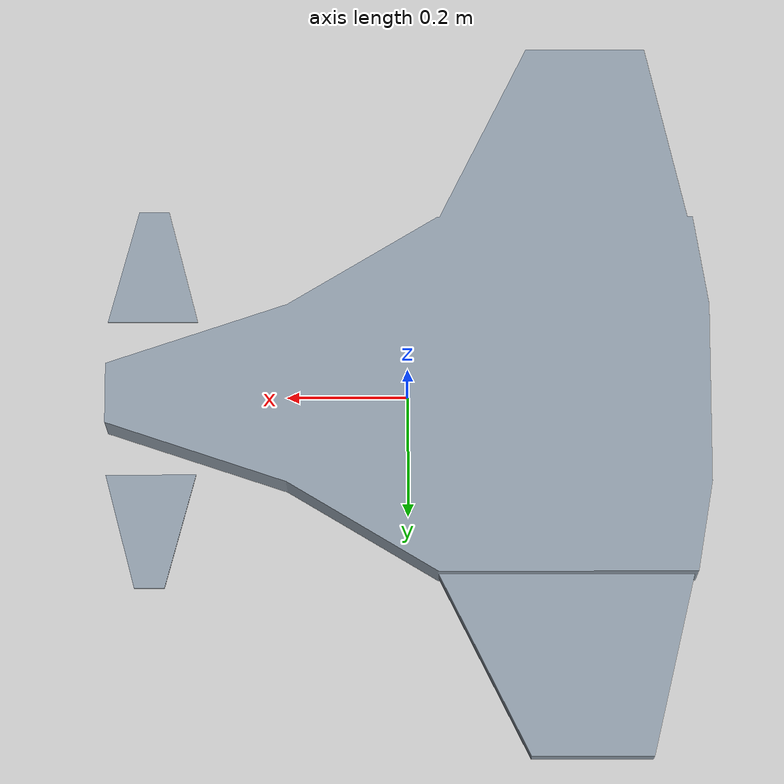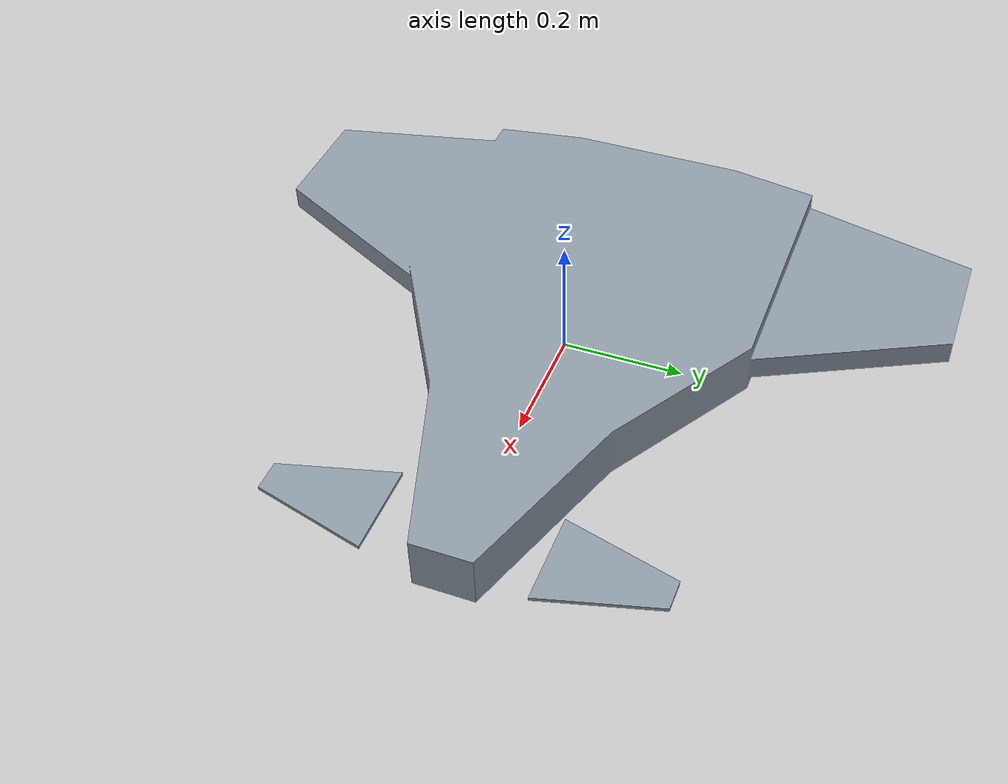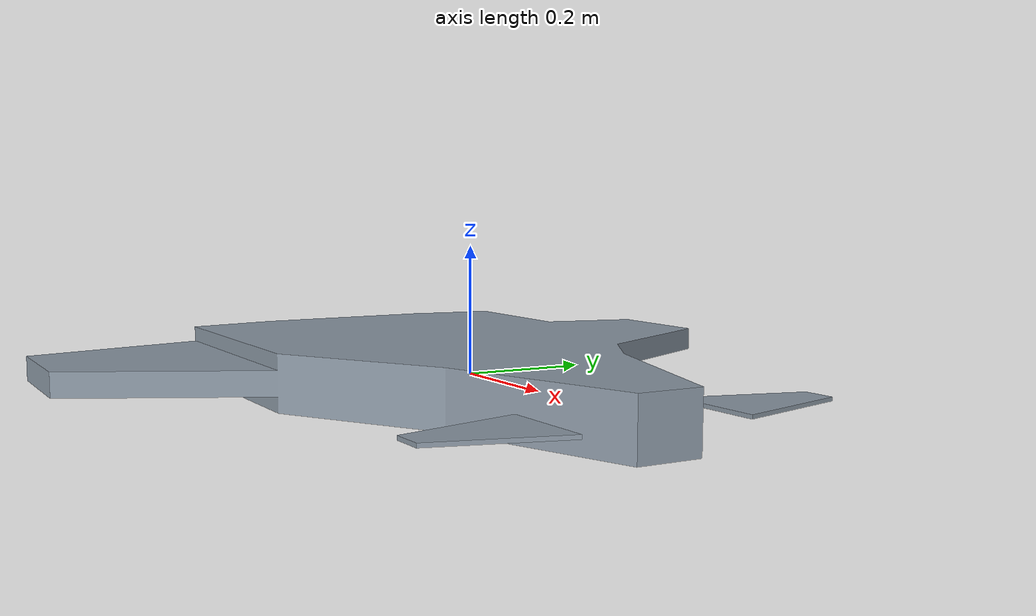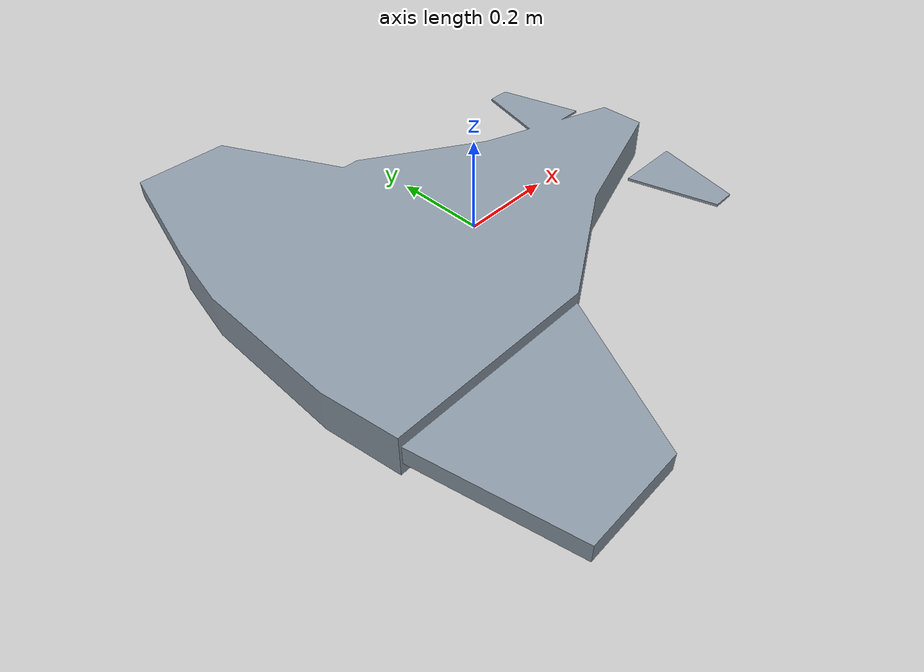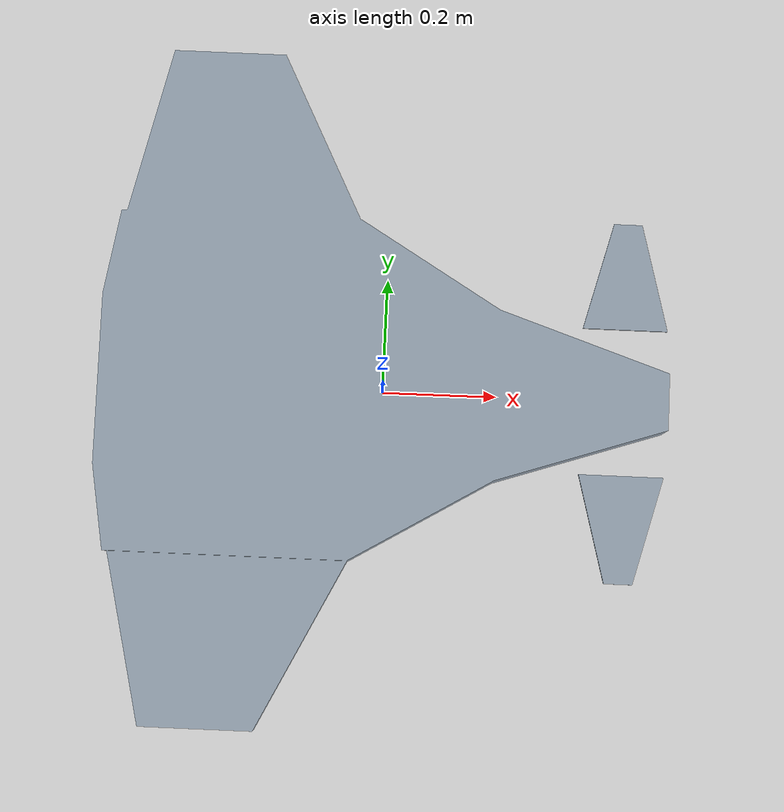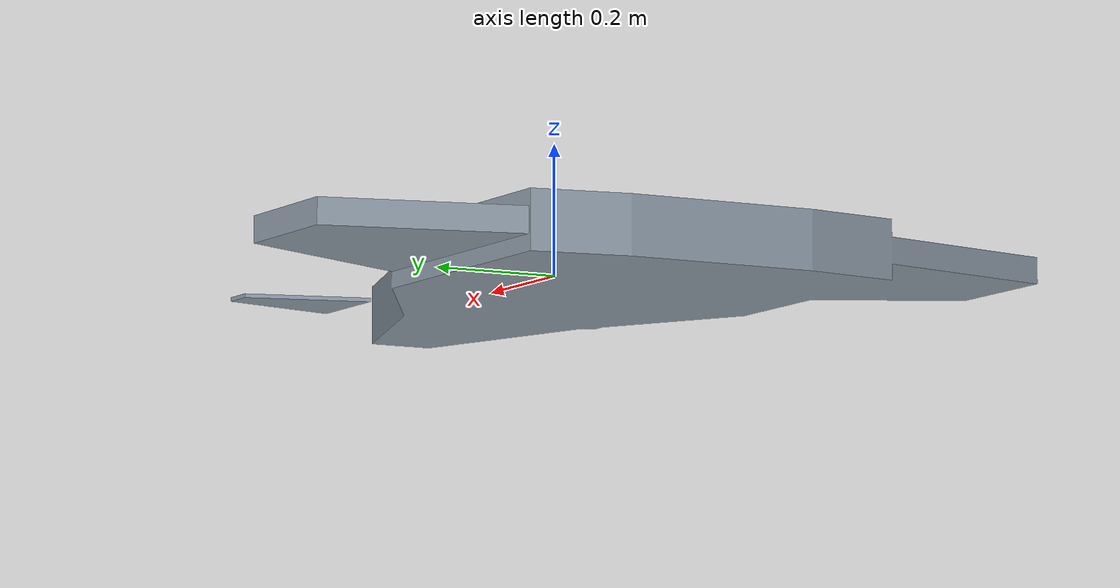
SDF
<?xml version="1.0"?>
<!-- generated by hil/gazebo/make_model.py from results/aero_db_10kg.json — do not edit by hand -->
<sdf version="1.9">
  <model name="ncav_subscale">
    <link name="base_link">
      <inertial>
        <mass>10.3000</mass>
        <inertia><ixx>0.18130</ixx><iyy>0.45071</iyy><izz>0.63175</izz><ixy>0</ixy><ixz>0</ixz><iyz>0</iyz></inertia>
      </inertial>
      <visual name="planform"><geometry><mesh><uri>meshes/planform.stl</uri></mesh></geometry>
        <material><ambient>0.45 0.5 0.55 1</ambient><diffuse>0.55 0.6 0.65 1</diffuse></material></visual>
      <collision name="nose"><pose>0.400 0.000 -0.10 0 0 0</pose>
        <geometry><sphere><radius>0.02</radius></sphere></geometry>
        <surface><friction><ode><mu>0.05</mu><mu2>0.8</mu2></ode></friction></surface></collision>
      <collision name="main_l"><pose>-0.080 0.120 -0.10 0 0 0</pose>
        <geometry><sphere><radius>0.02</radius></sphere></geometry>
        <surface><friction><ode><mu>0.05</mu><mu2>0.8</mu2></ode></friction></surface></collision>
      <collision name="main_r"><pose>-0.080 -0.120 -0.10 0 0 0</pose>
        <geometry><sphere><radius>0.02</radius></sphere></geometry>
        <surface><friction><ode><mu>0.05</mu><mu2>0.8</mu2></ode></friction></surface></collision>
      <sensor name="imu_sensor" type="imu">
        <always_on>1</always_on><update_rate>200</update_rate>
        <topic>/world/carrier/model/ncav_subscale/link/base_link/sensor/imu/imu</topic>
        <plugin filename="gz-sim-imu-system" name="gz::sim::systems::Imu"/>
      </sensor>
      <sensor name="navsat_sensor" type="navsat">
        <always_on>1</always_on><update_rate>10</update_rate>
        <topic>/world/carrier/model/ncav_subscale/link/base_link/sensor/navsat/navsat</topic>
        <plugin filename="gz-sim-navsat-system" name="gz::sim::systems::NavSat"/>
      </sensor>
      <sensor name="air_pressure_sensor" type="air_pressure">
        <always_on>1</always_on><update_rate>50</update_rate>
        <topic>/world/carrier/model/ncav_subscale/link/base_link/sensor/air_pressure/air_pressure</topic>
        <plugin filename="gz-sim-air-pressure-system" name="gz::sim::systems::AirPressure"/>
      </sensor>
      <sensor name="magnetometer_sensor" type="magnetometer">
        <always_on>1</always_on><update_rate>50</update_rate>
        <topic>/world/carrier/model/ncav_subscale/link/base_link/sensor/magnetometer/magnetometer</topic>
        <plugin filename="gz-sim-magnetometer-system" name="gz::sim::systems::Magnetometer"/>
      </sensor>
    </link>
    <link name="elevon_left"><pose>-0.37 0.45 0 0 0 0</pose>
      <inertial><mass>0.01</mass><inertia><ixx>1e-5</ixx><iyy>1e-5</iyy><izz>1e-5</izz></inertia></inertial></link>
    <link name="elevon_right"><pose>-0.37 -0.45 0 0 0 0</pose>
      <inertial><mass>0.01</mass><inertia><ixx>1e-5</ixx><iyy>1e-5</iyy><izz>1e-5</izz></inertia></inertial></link>
    <joint name="elevon_left_joint" type="revolute"><parent>base_link</parent><child>elevon_left</child>
      <axis><xyz>0 1 0</xyz><limit><lower>-0.35</lower><upper>0.35</upper></limit></axis></joint>
    <joint name="elevon_right_joint" type="revolute"><parent>base_link</parent><child>elevon_right</child>
      <axis><xyz>0 1 0</xyz><limit><lower>-0.35</lower><upper>0.35</upper></limit></axis></joint>
    <plugin filename="gz-sim-joint-position-controller-system" name="gz::sim::systems::JointPositionController">
      <joint_name>elevon_left_joint</joint_name><p_gain>2.0</p_gain><cmd_max>10</cmd_max><cmd_min>-10</cmd_min></plugin>
    <plugin filename="gz-sim-joint-position-controller-system" name="gz::sim::systems::JointPositionController">
      <joint_name>elevon_right_joint</joint_name><p_gain>2.0</p_gain><cmd_max>10</cmd_max><cmd_min>-10</cmd_min></plugin>
    <plugin filename="gz-sim-odometry-publisher-system" name="gz::sim::systems::OdometryPublisher">
      <dimensions>3</dimensions><odom_publish_frequency>200</odom_publish_frequency></plugin>
    <plugin filename="gz-sim-advanced-lift-drag-system" name="gz::sim::systems::AdvancedLiftDrag">
      <link_name>base_link</link_name>
      <air_density>1.225</air_density>
      <area>0.62475</area><AR>2.3049</AR><mac>0.64442</mac><eff>0.6168</eff>
      <forward>1 0 0</forward><upward>0 0 1</upward><cp>0 0 0</cp>
      <CL0>0.08197</CL0><CD0>0.00786</CD0><Cem0>0.00809</Cem0>
      <CLa>2.71101</CLa><Cema>-0.05119</Cema>
      <CYb>-0.04003</CYb><Cellb>-0.07659</Cellb><Cenb>0.02097</Cenb>
      <CLq>2.76525</CLq><Cemq>-1.04508</Cemq>
      <CYp>0.16486</CYp><Cellp>-0.18747</Cellp><Cenp>-0.03968</Cenp>
      <CYr>-0.02067</CYr><Cellr>0.12211</Cellr><Cenr>-0.01250</Cenr>
      <alpha_stall>0.34688</alpha_stall><Cema_stall>0.0</Cema_stall>
      <num_ctrl_surfaces>2</num_ctrl_surfaces>
        <control_surface>
          <name>elevon_left_joint</name><direction>1</direction>
          <CD_ctrl>0.000871</CD_ctrl>
          <CY_ctrl>-0.000138</CY_ctrl>
          <CL_ctrl>0.005086</CL_ctrl>
          <Cell_ctrl>0.001223</Cell_ctrl>
          <Cem_ctrl>-0.002006</Cem_ctrl>
          <Cen_ctrl>-0.000218</Cen_ctrl>
        </control_surface>
        <control_surface>
          <name>elevon_right_joint</name><direction>1</direction>
          <CD_ctrl>0.000871</CD_ctrl>
          <CY_ctrl>0.000138</CY_ctrl>
          <CL_ctrl>0.005086</CL_ctrl>
          <Cell_ctrl>-0.001223</Cell_ctrl>
          <Cem_ctrl>-0.002006</Cem_ctrl>
          <Cen_ctrl>0.000218</Cen_ctrl>
        </control_surface>
    </plugin>
  </model>
</sdf>
